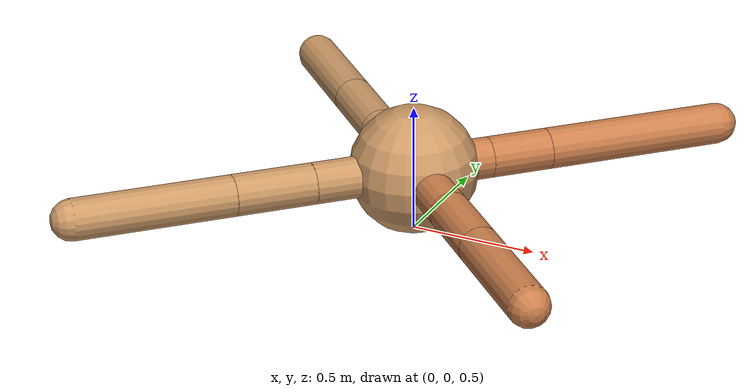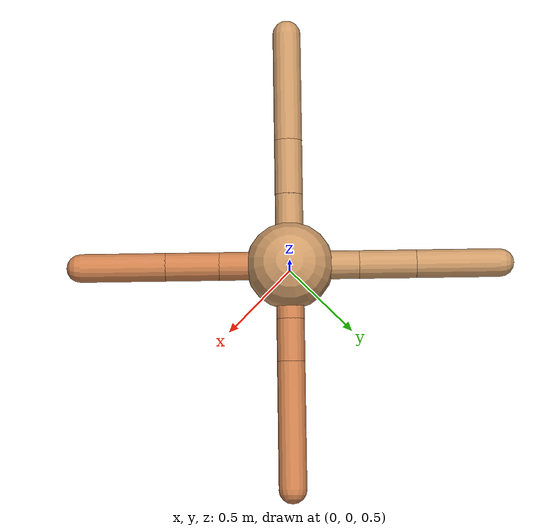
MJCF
<mujoco model="ant">
  <compiler angle="degree" coordinate="local" inertiafromgeom="true" />
  <option integrator="RK4" timestep="0.01" />
  <custom>
    <numeric data="0.0 0.0 0.55 1.0 0.0 0.0 0.0 0.0 1.0 0.0 -1.0 0.0 -1.0 0.0 1.0" name="init_qpos" />
  </custom>
  <default>
    <joint armature="1" damping="1" limited="true" />
    <geom conaffinity="0" condim="3" density="5.0" friction="1.5 0.1 0.1" margin="0.01" rgba="0.8 0.6 0.4 1" />
  </default>
  <worldbody>
    <body name="torso" pos="0 0 0.75">
      <geom name="torso_geom" pos="0 0 0" size="0.25" type="sphere" />

      <body name="front_left_leg" pos="0 0 0">
        <geom fromto="0.0 0.0 0.0 0.2158630335924265 0.2158630335924265 0.0" name="aux_1_geom" size="0.08" type="capsule" rgba=".8 .5 .3 1" />
        <body name="aux_1" pos="0.2158630335924265 0.2158630335924265 0.0">
          <joint axis="0 0 1" name="hip_1" pos="0.0 0.0 0.0" range="-40 40" type="hinge" />
          <geom fromto="0.0 0.0 0.0 0.17057127671936734 0.17057127671936734 0.0" name="left_leg_geom" size="0.08" type="capsule" rgba=".8 .5 .3 1" />
          <body pos="0.17057127671936734 0.17057127671936734 0.0" name="front_left_foot">
            <joint axis="-1 1 0" name="ankle_1" pos="0.0 0.0 0.0" range="30 100" type="hinge" />
            <geom fromto="0.0 0.0 0.0 0.5094318694954147 0.5094318694954147 0.0" name="left_ankle_geom" size="0.08" type="capsule" rgba=".8 .5 .3 1" />
          </body>
        </body>
      </body>
      <body name="front_right_leg" pos="0 0 0">
        <geom fromto="0.0 0.0 0.0 -0.27799278147143613 0.27799278147143613 0.0" name="aux_2_geom" size="0.08" type="capsule" />
        <body name="aux_2" pos="-0.27799278147143613 0.27799278147143613 0.0">
          <joint axis="0 0 1" name="hip_2" pos="0.0 0.0 0.0" range="-40 40" type="hinge" />
          <geom fromto="0.0 0.0 0.0 -0.22950272200044974 0.22950272200044974 0.0" name="right_leg_geom" size="0.08" type="capsule" />
          <body pos="-0.22950272200044974 0.22950272200044974 0.0" name="front_right_foot">
            <joint axis="1 1 0" name="ankle_2" pos="0.0 0.0 0.0" range="-100 -30" type="hinge" />
            <geom fromto="0.0 0.0 0.0 -0.3362694572164156 0.3362694572164156 0.0" name="right_ankle_geom" size="0.08" type="capsule" />
          </body>
        </body>
      </body>
      <body name="left_back_leg" pos="0 0 0">
        <geom fromto="0.0 0.0 0.0 -0.28694395842891546 -0.28694395842891546 0.0" name="aux_3_geom" size="0.08" type="capsule" />
        <body name="aux_3" pos="-0.28694395842891546 -0.28694395842891546 0.0">
          <joint axis="0 0 1" name="hip_3" pos="0.0 0.0 0.0" range="-40 40" type="hinge" />
          <geom fromto="0.0 0.0 0.0 -0.22095004102575208 -0.22095004102575208 0.0" name="back_leg_geom" size="0.08" type="capsule" />
          <body pos="-0.22095004102575208 -0.22095004102575208 0.0" name="left_back_foot">
            <joint axis="-1 1 0" name="ankle_3" pos="0.0 0.0 0.0" range="-100 -30" type="hinge" />
            <geom fromto="0.0 0.0 0.0 -0.4380511107787812 -0.4380511107787812 0.0" name="third_ankle_geom" size="0.08" type="capsule" />
          </body>
        </body>
      </body>
      <body name="right_back_leg" pos="0 0 0">
        <geom fromto="0.0 0.0 0.0 0.28250533772450365 -0.28250533772450365 0.0" name="aux_4_geom" size="0.08" type="capsule" rgba=".8 .5 .3 1" />
        <body name="aux_4" pos="0.28250533772450365 -0.28250533772450365 0.0">
          <joint axis="0 0 1" name="hip_4" pos="0.0 0.0 0.0" range="-40 40" type="hinge" />
          <geom fromto="0.0 0.0 0.0 0.21530886734278273 -0.21530886734278273 0.0" name="rightback_leg_geom" size="0.08" type="capsule" rgba=".8 .5 .3 1" />
          <body pos="0.21530886734278273 -0.21530886734278273 0.0" name="right_back_foot">
            <joint axis="1 1 0" name="ankle_4" pos="0.0 0.0 0.0" range="30 100" type="hinge" />
            <geom fromto="0.0 0.0 0.0 0.3410860373366418 -0.3410860373366418 0.0" name="fourth_ankle_geom" size="0.08" type="capsule" rgba=".8 .5 .3 1" />
          </body>
        </body>
      </body>
    </body>
  </worldbody>
  <actuator>
    <motor ctrllimited="true" ctrlrange="-1.0 1.0" joint="hip_4" gear="150" />
    <motor ctrllimited="true" ctrlrange="-1.0 1.0" joint="ankle_4" gear="150" />
    <motor ctrllimited="true" ctrlrange="-1.0 1.0" joint="hip_1" gear="150" />
    <motor ctrllimited="true" ctrlrange="-1.0 1.0" joint="ankle_1" gear="150" />
    <motor ctrllimited="true" ctrlrange="-1.0 1.0" joint="hip_2" gear="150" />
    <motor ctrllimited="true" ctrlrange="-1.0 1.0" joint="ankle_2" gear="150" />
    <motor ctrllimited="true" ctrlrange="-1.0 1.0" joint="hip_3" gear="150" />
    <motor ctrllimited="true" ctrlrange="-1.0 1.0" joint="ankle_3" gear="150" />
  </actuator>
</mujoco>
